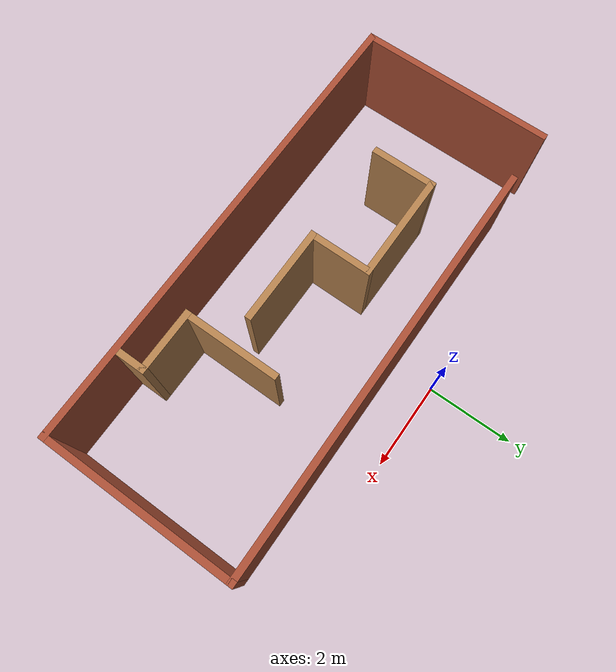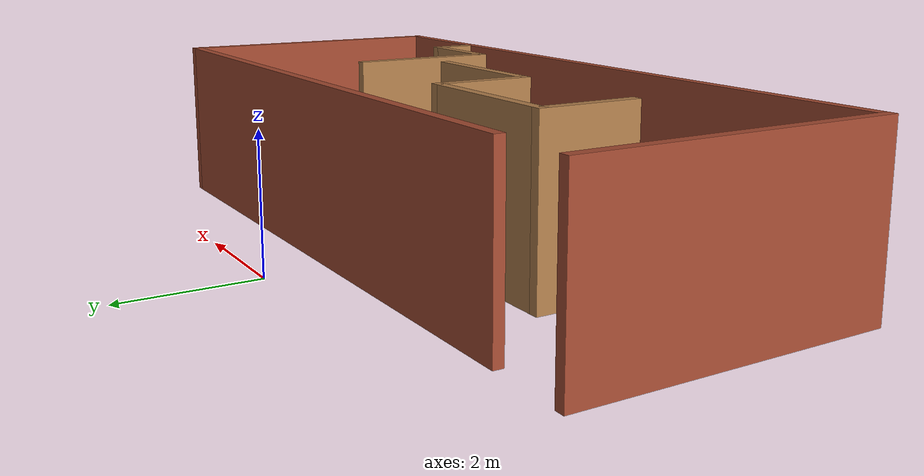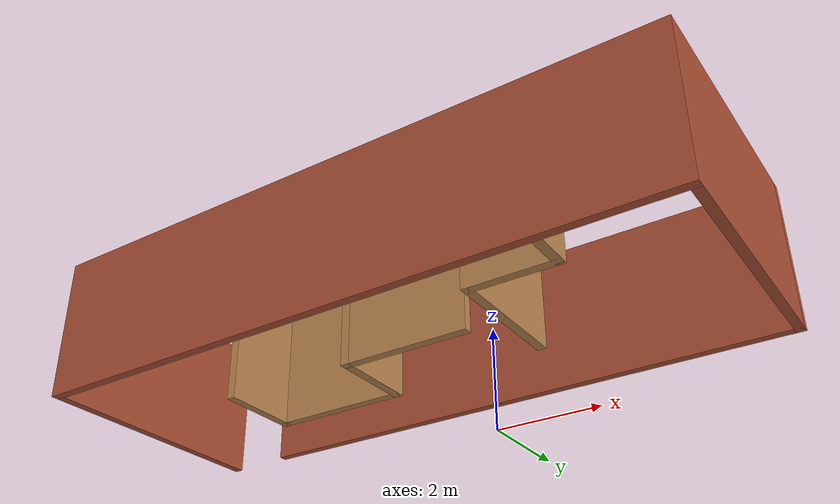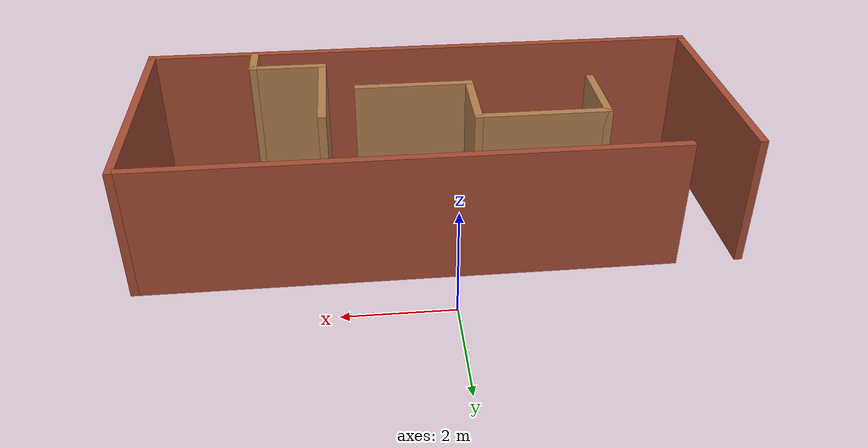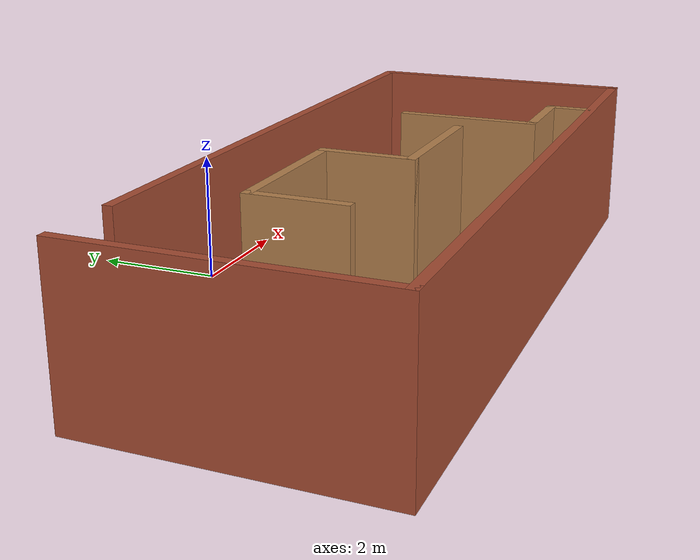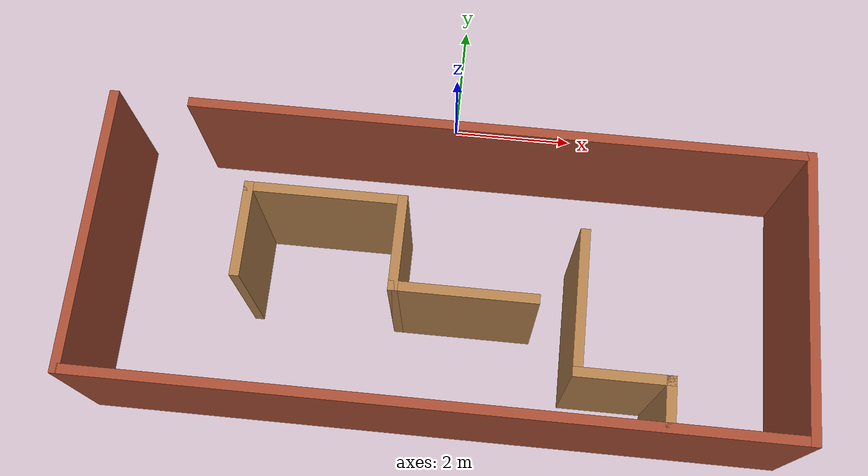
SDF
<?xml version='1.0'?>
<sdf version='1.7'>
  <model name='maze'>
    <pose>0.12075 -2.70814 0 0 -0 0</pose>
    <link name='Wall_0'>
      <collision name='Wall_0_Collision'>
        <geometry>
          <box>
            <size>4.5 0.15 2.5</size>
          </box>
        </geometry>
        <pose>0 0 1.25 0 -0 0</pose>
      </collision>
      <visual name='Wall_0_Visual'>
        <pose>0 0 1.25 0 -0 0</pose>
        <geometry>
          <box>
            <size>4.5 0.15 2.5</size>
          </box>
        </geometry>
        <material>
          <script>
            <uri>file://media/materials/scripts/gazebo.material</uri>
            <name>Gazebo/Bricks</name>
          </script>
          <ambient>1 1 1 1</ambient>
        </material>
        <meta>
          <layer>0</layer>
        </meta>
      </visual>
      <pose>-5.425 -0.458138 0 0 -0 -1.5708</pose>
    </link>
    <link name='Wall_1'>
      <collision name='Wall_1_Collision'>
        <geometry>
          <box>
            <size>11 0.15 2.5</size>
          </box>
        </geometry>
        <pose>0 0 1.25 0 -0 0</pose>
      </collision>
      <visual name='Wall_1_Visual'>
        <pose>0 0 1.25 0 -0 0</pose>
        <geometry>
          <box>
            <size>11 0.15 2.5</size>
          </box>
        </geometry>
        <material>
          <script>
            <uri>file://media/materials/scripts/gazebo.material</uri>
            <name>Gazebo/Bricks</name>
          </script>
          <ambient>1 1 1 1</ambient>
        </material>
        <meta>
          <layer>0</layer>
        </meta>
      </visual>
      <pose>-0 -2.63314 0 0 -0 0</pose>
    </link>
    <link name='Wall_10'>
      <collision name='Wall_10_Collision'>
        <geometry>
          <box>
            <size>2.25 0.15 2.5</size>
          </box>
        </geometry>
        <pose>0 0 1.25 0 -0 0</pose>
      </collision>
      <visual name='Wall_10_Visual'>
        <pose>0 0 1.25 0 -0 0</pose>
        <geometry>
          <box>
            <size>2.25 0.15 2.5</size>
          </box>
        </geometry>
        <material>
          <script>
            <uri>file://media/materials/scripts/gazebo.material</uri>
            <name>Gazebo/Wood</name>
          </script>
          <ambient>1 1 1 1</ambient>
        </material>
        <meta>
          <layer>0</layer>
        </meta>
      </visual>
      <pose>2.0385 -0.908638 0 0 -0 -1.5708</pose>
    </link>
    <link name='Wall_11'>
      <collision name='Wall_11_Collision'>
        <geometry>
          <box>
            <size>1.5 0.15 2.5</size>
          </box>
        </geometry>
        <pose>0 0 1.25 0 -0 0</pose>
      </collision>
      <visual name='Wall_11_Visual'>
        <pose>0 0 1.25 0 -0 0</pose>
        <geometry>
          <box>
            <size>1.5 0.15 2.5</size>
          </box>
        </geometry>
        <material>
          <script>
            <uri>file://media/materials/scripts/gazebo.material</uri>
            <name>Gazebo/Wood</name>
          </script>
          <ambient>1 1 1 1</ambient>
        </material>
        <meta>
          <layer>0</layer>
        </meta>
      </visual>
      <pose>2.7135 -1.95864 0 0 -0 0</pose>
    </link>
    <link name='Wall_12'>
      <collision name='Wall_12_Collision'>
        <geometry>
          <box>
            <size>0.75 0.15 2.5</size>
          </box>
        </geometry>
        <pose>0 0 1.25 0 -0 0</pose>
      </collision>
      <visual name='Wall_12_Visual'>
        <pose>0 0 1.25 0 -0 0</pose>
        <geometry>
          <box>
            <size>0.75 0.15 2.5</size>
          </box>
        </geometry>
        <material>
          <script>
            <uri>file://media/materials/scripts/gazebo.material</uri>
            <name>Gazebo/Wood</name>
          </script>
          <ambient>1 1 1 1</ambient>
        </material>
        <meta>
          <layer>0</layer>
        </meta>
      </visual>
      <pose>3.3885 -2.25864 0 0 -0 -1.5708</pose>
    </link>
    <link name='Wall_2'>
      <collision name='Wall_2_Collision'>
        <geometry>
          <box>
            <size>4.5 0.15 2.5</size>
          </box>
        </geometry>
        <pose>0 0 1.25 0 -0 0</pose>
      </collision>
      <visual name='Wall_2_Visual'>
        <pose>0 0 1.25 0 -0 0</pose>
        <geometry>
          <box>
            <size>4.5 0.15 2.5</size>
          </box>
        </geometry>
        <material>
          <script>
            <uri>file://media/materials/scripts/gazebo.material</uri>
            <name>Gazebo/Bricks</name>
          </script>
          <ambient>1 1 1 1</ambient>
        </material>
        <meta>
          <layer>0</layer>
        </meta>
      </visual>
      <pose>5.425 -0.458138 0 0 -0 1.5708</pose>
    </link>
    <link name='Wall_3'>
      <collision name='Wall_3_Collision'>
        <geometry>
          <box>
            <size>9.75 0.15 2.5</size>
          </box>
        </geometry>
        <pose>0 0 1.25 0 -0 0</pose>
      </collision>
      <visual name='Wall_3_Visual'>
        <pose>0 0 1.25 0 -0 0</pose>
        <geometry>
          <box>
            <size>9.75 0.15 2.5</size>
          </box>
        </geometry>
        <material>
          <script>
            <uri>file://media/materials/scripts/gazebo.material</uri>
            <name>Gazebo/Bricks</name>
          </script>
          <ambient>1 1 1 1</ambient>
        </material>
        <meta>
          <layer>0</layer>
        </meta>
      </visual>
      <pose>0.625 1.71686 0 0 -0 3.14159</pose>
    </link>
    <link name='Wall_5'>
      <collision name='Wall_5_Collision'>
        <geometry>
          <box>
            <size>1.5 0.15 2.5</size>
          </box>
        </geometry>
        <pose>0 0 1.25 0 -0 0</pose>
      </collision>
      <visual name='Wall_5_Visual'>
        <pose>0 0 1.25 0 -0 0</pose>
        <geometry>
          <box>
            <size>1.5 0.15 2.5</size>
          </box>
        </geometry>
        <material>
          <script>
            <uri>file://media/materials/scripts/gazebo.material</uri>
            <name>Gazebo/Wood</name>
          </script>
          <ambient>1 1 1 1</ambient>
        </material>
        <meta>
          <layer>0</layer>
        </meta>
      </visual>
      <pose>-3.0905 -0.264637 0 0 -0 1.5708</pose>
    </link>
    <link name='Wall_6'>
      <collision name='Wall_6_Collision'>
        <geometry>
          <box>
            <size>2.5 0.15 2.5</size>
          </box>
        </geometry>
        <pose>0 0 1.25 0 -0 0</pose>
      </collision>
      <visual name='Wall_6_Visual'>
        <pose>0 0 1.25 0 -0 0</pose>
        <geometry>
          <box>
            <size>2.5 0.15 2.5</size>
          </box>
        </geometry>
        <material>
          <script>
            <uri>file://media/materials/scripts/gazebo.material</uri>
            <name>Gazebo/Wood</name>
          </script>
          <ambient>1 1 1 1</ambient>
        </material>
        <meta>
          <layer>0</layer>
        </meta>
      </visual>
      <pose>-1.9155 0.410362 0 0 -0 0</pose>
    </link>
    <link name='Wall_7'>
      <collision name='Wall_7_Collision'>
        <geometry>
          <box>
            <size>1.5 0.15 2.5</size>
          </box>
        </geometry>
        <pose>0 0 1.25 0 -0 0</pose>
      </collision>
      <visual name='Wall_7_Visual'>
        <pose>0 0 1.25 0 -0 0</pose>
        <geometry>
          <box>
            <size>1.5 0.15 2.5</size>
          </box>
        </geometry>
        <material>
          <script>
            <uri>file://media/materials/scripts/gazebo.material</uri>
            <name>Gazebo/Wood</name>
          </script>
          <ambient>1 1 1 1</ambient>
        </material>
        <meta>
          <layer>0</layer>
        </meta>
      </visual>
      <pose>-0.7405 -0.264637 0 0 -0 -1.5708</pose>
    </link>
    <link name='Wall_8'>
      <collision name='Wall_8_Collision'>
        <geometry>
          <box>
            <size>2.25 0.15 2.5</size>
          </box>
        </geometry>
        <pose>0 0 1.25 0 -0 0</pose>
      </collision>
      <visual name='Wall_8_Visual'>
        <pose>0 0 1.25 0 -0 0</pose>
        <geometry>
          <box>
            <size>2.25 0.15 2.5</size>
          </box>
        </geometry>
        <material>
          <script>
            <uri>file://media/materials/scripts/gazebo.material</uri>
            <name>Gazebo/Wood</name>
          </script>
          <ambient>1 1 1 1</ambient>
        </material>
        <meta>
          <layer>0</layer>
        </meta>
      </visual>
      <pose>0.3095 -0.939637 0 0 -0 0</pose>
    </link>
    <static>1</static>
  </model>
</sdf>
